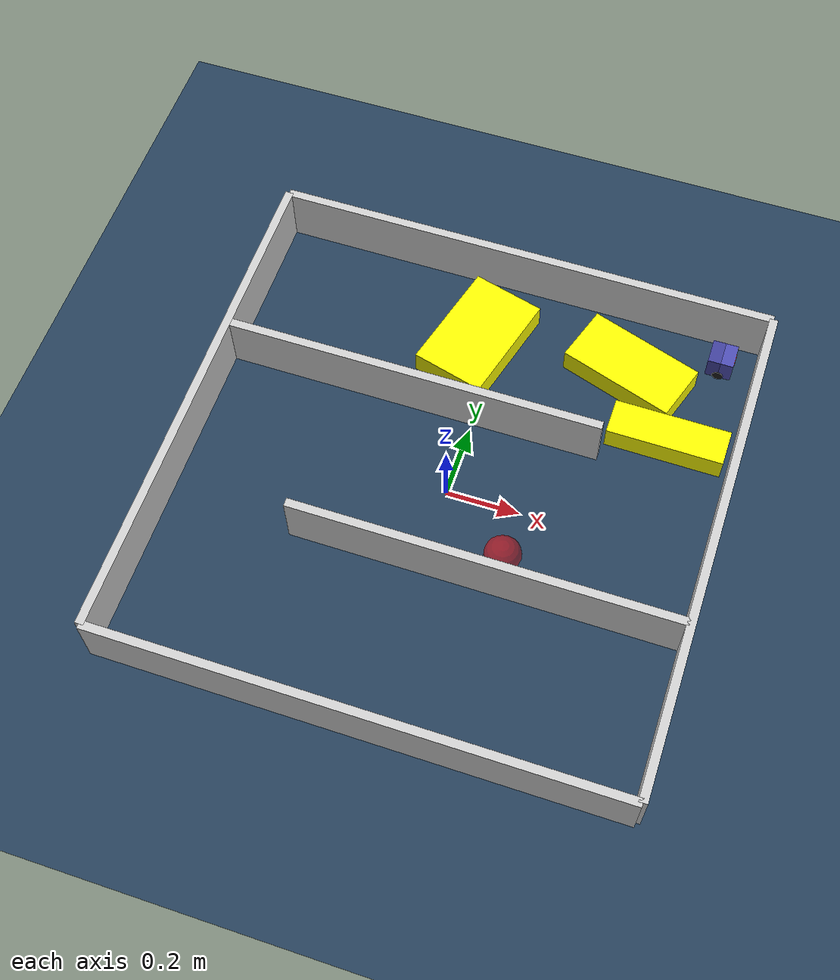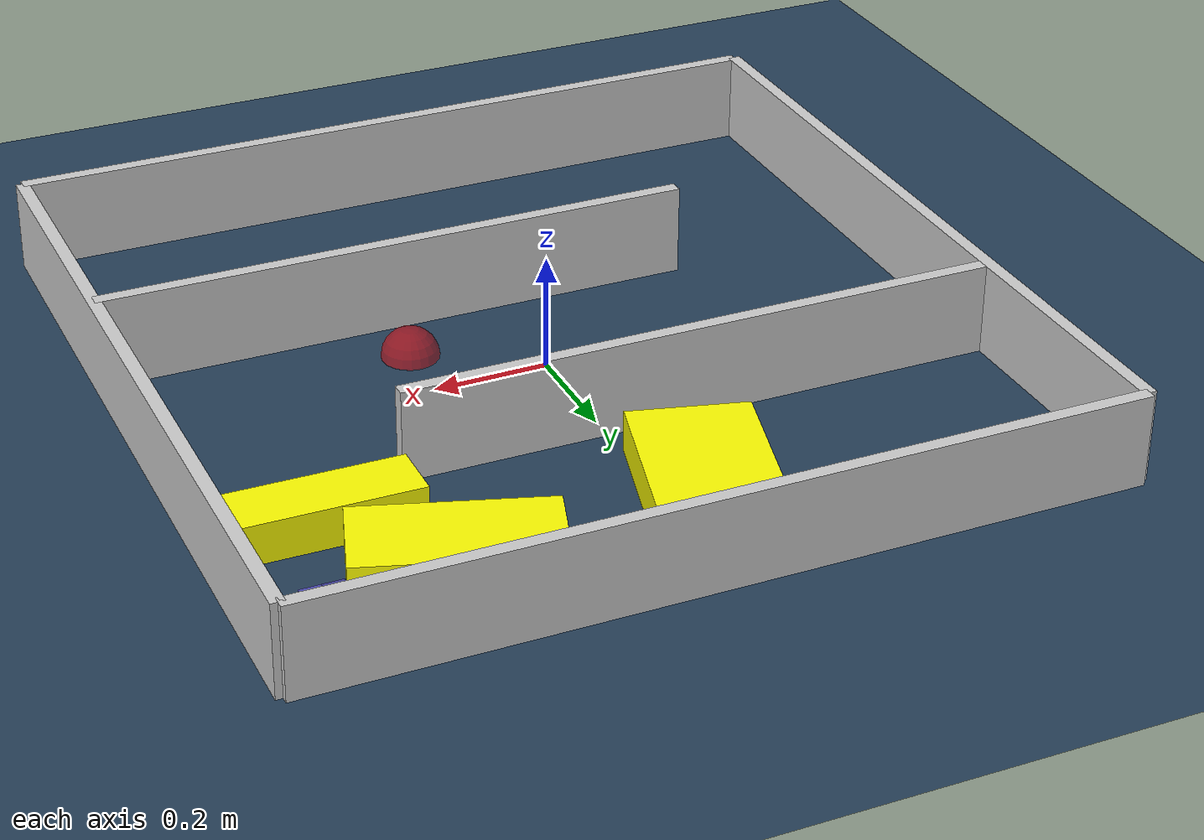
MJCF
<?xml version='1.0' encoding='utf-8'?>
<mujoco model="generated_environment">
  <option timestep="0.002" integrator="implicitfast" cone="elliptic" iterations="100" gravity="0 0 -9.81" />
  <default>
    <geom density="1" />
  </default>
  <asset>
    <texture builtin="gradient" height="3072" rgb1="0.3 0.5 0.7" rgb2="0 0 0" type="skybox" width="512" />
    <texture builtin="checker" height="300" mark="edge" markrgb="0.8 0.8 0.8" name="groundplane" rgb1="0.2 0.3 0.4" rgb2="0.1 0.2 0.3" type="2d" width="300" />
    <material name="groundplane" reflectance="0.2" texrepeat="5 5" texture="groundplane" texuniform="true" />
    <material name="robot" rgba="1.0 1.0 0.0 1.0" />
  </asset>
  <worldbody>
    <light dir="0 0 -1" directional="true" pos="0 0 1.5" />
    <geom condim="4" friction="0.5 0.005 0.001" material="groundplane" name="floor" size="0 0 0.05" type="plane" />
    <body name="walls">
      <geom name="wall_1" condim="4" pos="-0.699000 0.000000 0.080000" rgba="0.800000011920929 0.800000011920929 0.800000011920929 1.0" size="0.011650 0.699000 0.080000" type="box" />
      <geom name="wall_2" condim="4" pos="0.699000 0.000000 0.080000" rgba="0.800000011920929 0.800000011920929 0.800000011920929 1.0" size="0.011650 0.699000 0.080000" type="box" />
      <geom name="wall_3" condim="4" pos="0.000000 -0.699000 0.080000" rgba="0.800000011920929 0.800000011920929 0.800000011920929 1.0" size="0.699000 0.011650 0.080000" type="box" />
      <geom name="wall_4" condim="4" pos="0.000000 0.699000 0.080000" rgba="0.800000011920929 0.800000011920929 0.800000011920929 1.0" size="0.699000 0.011650 0.080000" type="box" />
      <geom name="wall_5" condim="4" pos="0.174750 -0.233000 0.080000" rgba="0.800000011920929 0.800000011920929 0.800000011920929 1.0" size="0.524250 0.011650 0.080000" type="box" />
      <geom name="wall_6" condim="4" pos="-0.174750 0.233000 0.080000" rgba="0.800000011920929 0.800000011920929 0.800000011920929 1.0" size="0.524250 0.011650 0.080000" type="box" />
    </body>
    <body name="car" pos="0.5949999999999999 0.6050000000000001 0.010000">
      <freejoint name="car_freejoint" />
      <inertial pos="0.000000 0 0.037500" mass="0.350000" diaginertia="0.000266 0.000266 0.000286" />
      <geom name="front_chassis_collision" type="box" pos="0.017500 0 0.037500" size="0.017500 0.035000 0.032500" rgba="0.3 0.3 0.7 1" />
      <geom name="rear_chassis_collision" type="box" pos="-0.017500 0 0.037500" size="0.017500 0.035000 0.032500" rgba="0.25 0.25 0.6 1" />
      <geom name="front_marker" type="box" pos="0.034000 0 0.050500" size="0.002000 0.015000 0.010000" rgba="1.0 0.2 0.2 1" contype="0" conaffinity="0" />
      <body name="rear_support_body" pos="-0.030000 0.000000 0.002500">
        <joint name="rear_caster_joint" type="ball" damping="0.0001" />
        <inertial pos="0 0 0" mass="0.025000" diaginertia="0.000001 0.000001 0.000001" />
        <geom name="rear_support" type="sphere" pos="0 0 0" size="0.002500" friction="0.000000 0.000000 0.000000" rgba="0.7 0.1 0.1 1" />
      </body>
      <body name="front_support_body" pos="0.030000 0.000000 0.002500">
        <joint name="front_caster_joint" type="ball" damping="0.0001" />
        <inertial pos="0 0 0" mass="0.025000" diaginertia="0.000001 0.000001 0.000001" />
        <geom name="front_support" type="sphere" pos="0 0 0" size="0.002500" friction="0.000000 0.000000 0.000000" rgba="0.1 0.7 0.1 1" />
      </body>
      <body name="left_wheel" pos="0.000000 0.037500 0.015000">
        <inertial pos="0 0 0" mass="0.050000" diaginertia="0.000003 0.000006 0.000003" />
        <joint name="left_wheel_joint" type="hinge" axis="0 1 0" />
        <geom name="left_wheel_collision" type="cylinder" size="0.015000 0.000500" euler="90 0 0" rgba="0.1 0.1 0.1 1" />
      </body>
      <body name="right_wheel" pos="0.000000 -0.037500 0.015000">
        <inertial pos="0 0 0" mass="0.050000" diaginertia="0.000003 0.000006 0.000003" />
        <joint name="right_wheel_joint" type="hinge" axis="0 1 0" />
        <geom name="right_wheel_collision" type="cylinder" size="0.015000 0.000500" euler="90 0 0" rgba="0.1 0.1 0.1 1" />
      </body>
    </body>
    <body name="obstacle_0_movable">
      <geom name="obstacle_0_movable" condim="4" pos="0.5141077856713443 0.3245091903297608 0.035" euler="0 0 269.5323296714356" friction="0.0 0.005 0.001" rgba="1 1 0 1" size="0.0505343256755586 0.15900118068269636 0.035" type="box" mass="0.1" />
      <joint type="free" />
    </body>
    <body name="obstacle_1_movable">
      <geom name="obstacle_1_movable" condim="4" pos="-0.06241175077531469 0.4721216846797609 0.035" euler="0 0 255.07604504189797" friction="0.0 0.005 0.001" rgba="1 1 0 1" size="0.15853905298529908 0.10243143027021612 0.035" type="box" mass="0.1" />
      <joint type="free" />
    </body>
    <body name="obstacle_2_movable">
      <geom name="obstacle_2_movable" condim="4" pos="0.3633484906695712 0.5053611532918008 0.035" euler="0 0 71.9296911478117" friction="0.0 0.005 0.001" rgba="1 1 0 1" size="0.0812152316359714 0.16387084607293928 0.035" type="box" mass="0.1" />
      <joint type="free" />
    </body>
    <site name="goal" type="sphere" pos="0.19499999999999995 -0.12499999999999989 0.0" size="0.05" rgba="1 0 0 0.5" />
  </worldbody>
  <actuator>
    <velocity name="left_wheel_drive" joint="left_wheel_joint" ctrlrange="-25.000000 25.000000" kv="0.750000" forcerange="-0.300000 0.300000" />
    <velocity name="right_wheel_drive" joint="right_wheel_joint" ctrlrange="-25.000000 25.000000" kv="0.750000" forcerange="-0.300000 0.300000" />
  </actuator>
</mujoco>
